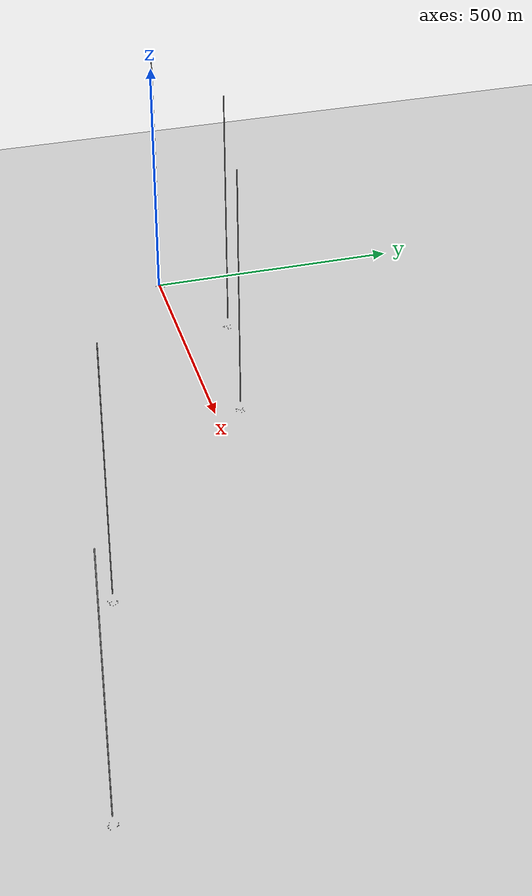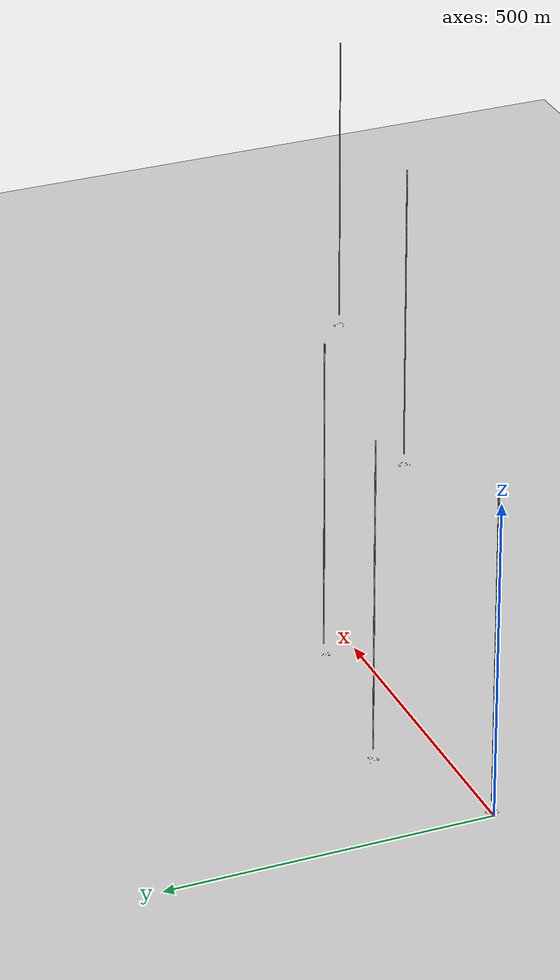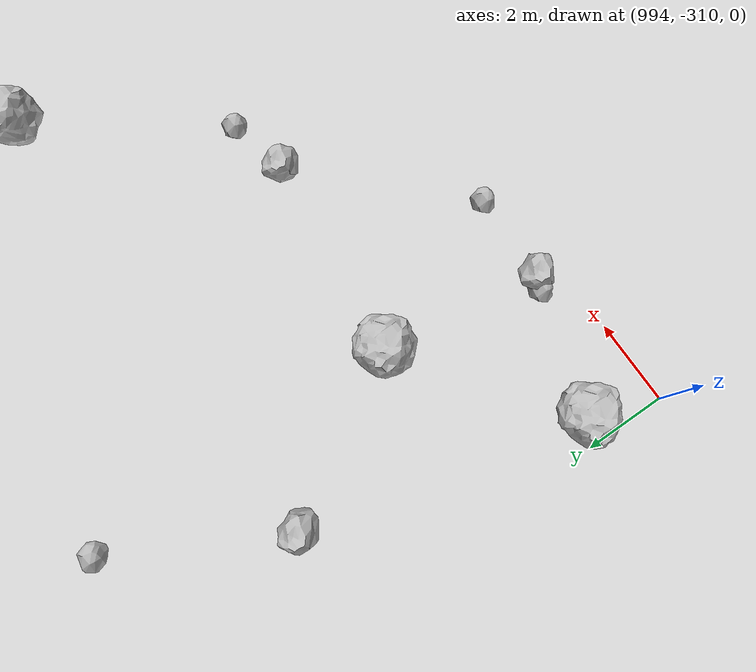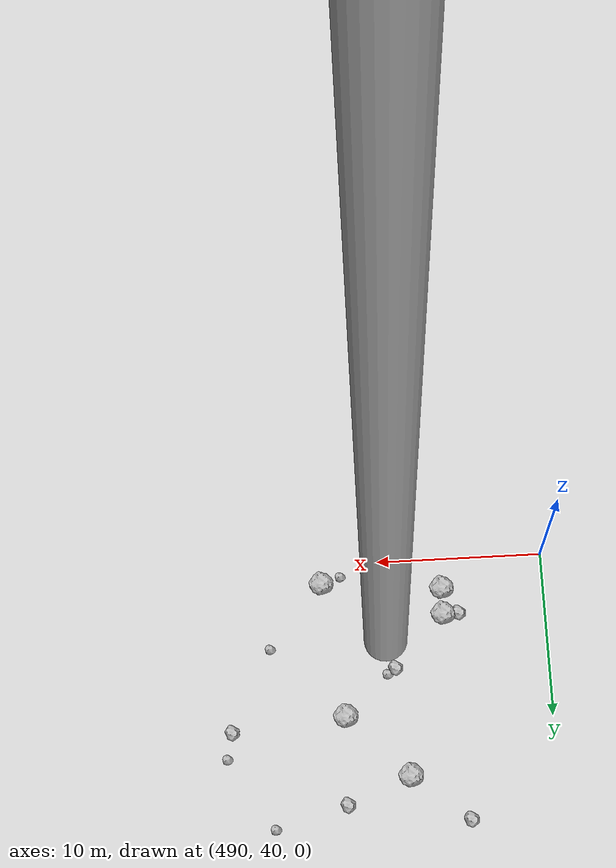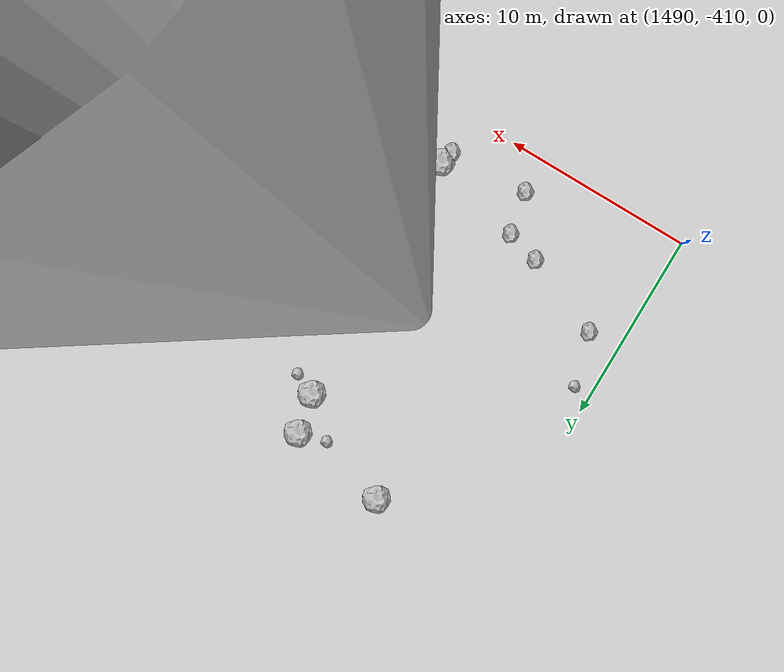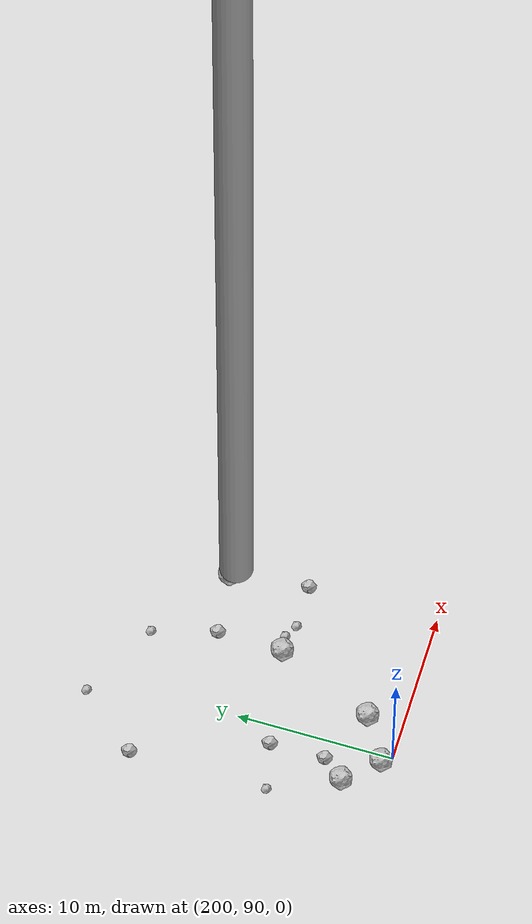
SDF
<?xml version="1.0" ?>
<sdf version="1.6">
  <world name="default">

    <include>
      <uri>model://custom_ground</uri>
    </include>

    <include>
      <uri>model://sun</uri>
    </include>

    <spherical_coordinates>
      <surface_model>EARTH_WGS84</surface_model>
      <latitude_deg>38.161479</latitude_deg>
      <longitude_deg>-122.454630</longitude_deg>
      <elevation>488.0</elevation>
      <heading_deg>90</heading_deg>
    </spherical_coordinates>

    <model name="rock1_0_0">
      <include>
        <uri>model://rock1</uri>
        <pose>12.414806147870905 8.059480577474957 0.5 0 0 0</pose>
      </include>
    </model>
    <model name="rock1_0_1">
      <include>
        <uri>model://rock1</uri>
        <pose>5.252832881433456 -8.444166113372017 0.5 0 0 0</pose>
      </include>
    </model>
    <model name="rock1_0_2">
      <include>
        <uri>model://rock1</uri>
        <pose>18.2785585588813 2.480269732250724 0.5 0 0 0</pose>
      </include>
    </model>
    <model name="rock1_0_3">
      <include>
        <uri>model://rock1</uri>
        <pose>16.894661932624004 3.680151363376396 0.5 0 0 0</pose>
      </include>
    </model>
    <model name="rock1_0_4">
      <include>
        <uri>model://rock1</uri>
        <pose>4.777426614624856 5.494429066981002 0.5 0 0 0</pose>
      </include>
    </model>
    <model name="rock2_0_0">
      <include>
        <uri>model://rock2</uri>
        <pose>9.709381398856785 7.613753465027116 0.3 0 0 0</pose>
      </include>
    </model>
    <model name="rock2_0_1">
      <include>
        <uri>model://rock2</uri>
        <pose>5.96968204055369 6.244011946276494 0.3 0 0 0</pose>
      </include>
    </model>
    <model name="rock2_0_2">
      <include>
        <uri>model://rock2</uri>
        <pose>12.63768310649562 8.435789461421564 0.3 0 0 0</pose>
      </include>
    </model>
    <model name="rock2_0_3">
      <include>
        <uri>model://rock2</uri>
        <pose>12.302609515158721 -9.59739479584675 0.3 0 0 0</pose>
      </include>
    </model>
    <model name="rock2_0_4">
      <include>
        <uri>model://rock2</uri>
        <pose>17.019501139987547 -0.634001479494195 0.3 0 0 0</pose>
      </include>
    </model>
    <model name="rock3_0_0">
      <include>
        <uri>model://rock3</uri>
        <pose>11.622883365654577 -6.528478879332544 0.2 0 0 0</pose>
      </include>
    </model>
    <model name="rock3_0_1">
      <include>
        <uri>model://rock3</uri>
        <pose>13.199309737126324 -3.899646057876036 0.2 0 0 0</pose>
      </include>
    </model>
    <model name="rock3_0_2">
      <include>
        <uri>model://rock3</uri>
        <pose>18.167544199163988 -2.8664029133122604 0.2 0 0 0</pose>
      </include>
    </model>
    <model name="rock3_0_3">
      <include>
        <uri>model://rock3</uri>
        <pose>14.346629407630383 7.306392850063897 0.2 0 0 0</pose>
      </include>
    </model>
    <model name="rock3_0_4">
      <include>
        <uri>model://rock3</uri>
        <pose>12.571167001036436 -4.219325494090245 0.2 0 0 0</pose>
      </include>
    </model>
    <model name="rock1_1_0">
      <include>
        <uri>model://rock1</uri>
        <pose>197.68191126914698 92.64618782822907 0.5 0 0 0</pose>
      </include>
    </model>
    <model name="rock1_1_1">
      <include>
        <uri>model://rock1</uri>
        <pose>205.07909044661716 98.64676087987677 0.5 0 0 0</pose>
      </include>
    </model>
    <model name="rock1_1_2">
      <include>
        <uri>model://rock1</uri>
        <pose>202.33973514002463 92.30320115160532 0.5 0 0 0</pose>
      </include>
    </model>
    <model name="rock1_1_3">
      <include>
        <uri>model://rock1</uri>
        <pose>199.59426533491236 90.6327652414019 0.5 0 0 0</pose>
      </include>
    </model>
    <model name="rock1_1_4">
      <include>
        <uri>model://rock1</uri>
        <pose>209.17169395540148 103.33450811497949 0.5 0 0 0</pose>
      </include>
    </model>
    <model name="rock2_1_0">
      <include>
        <uri>model://rock2</uri>
        <pose>198.76924324769826 94.01593457909229 0.3 0 0 0</pose>
      </include>
    </model>
    <model name="rock2_1_1">
      <include>
        <uri>model://rock2</uri>
        <pose>195.70435808552145 105.68990002730078 0.3 0 0 0</pose>
      </include>
    </model>
    <model name="rock2_1_2">
      <include>
        <uri>model://rock2</uri>
        <pose>205.15904639299873 102.88661007251604 0.3 0 0 0</pose>
      </include>
    </model>
    <model name="rock2_1_3">
      <include>
        <uri>model://rock2</uri>
        <pose>198.74265750906613 97.54440668922201 0.3 0 0 0</pose>
      </include>
    </model>
    <model name="rock2_1_4">
      <include>
        <uri>model://rock2</uri>
        <pose>209.83132977167415 98.35659133267148 0.3 0 0 0</pose>
      </include>
    </model>
    <model name="rock3_1_0">
      <include>
        <uri>model://rock3</uri>
        <pose>198.9322023092514 109.47522816485633 0.2 0 0 0</pose>
      </include>
    </model>
    <model name="rock3_1_1">
      <include>
        <uri>model://rock3</uri>
        <pose>195.71226763617685 96.83361194158196 0.2 0 0 0</pose>
      </include>
    </model>
    <model name="rock3_1_2">
      <include>
        <uri>model://rock3</uri>
        <pose>206.9802035712102 98.29074815137267 0.2 0 0 0</pose>
      </include>
    </model>
    <model name="rock3_1_3">
      <include>
        <uri>model://rock3</uri>
        <pose>204.0029238534855 106.88287371354129 0.2 0 0 0</pose>
      </include>
    </model>
    <model name="rock3_1_4">
      <include>
        <uri>model://rock3</uri>
        <pose>206.08951675047496 98.76761011672407 0.2 0 0 0</pose>
      </include>
    </model>
    <model name="rock1_2_0">
      <include>
        <uri>model://rock1</uri>
        <pose>498.6645492785418 53.22779694960341 0.5 0 0 0</pose>
      </include>
    </model>
    <model name="rock1_2_1">
      <include>
        <uri>model://rock1</uri>
        <pose>502.32953921384217 49.526577911056805 0.5 0 0 0</pose>
      </include>
    </model>
    <model name="rock1_2_2">
      <include>
        <uri>model://rock1</uri>
        <pose>503.47507740359066 41.314143169579296 0.5 0 0 0</pose>
      </include>
    </model>
    <model name="rock1_2_3">
      <include>
        <uri>model://rock1</uri>
        <pose>496.2031103891442 43.523620884584986 0.5 0 0 0</pose>
      </include>
    </model>
    <model name="rock1_2_4">
      <include>
        <uri>model://rock1</uri>
        <pose>496.1924556896246 41.91208410685252 0.5 0 0 0</pose>
      </include>
    </model>
    <model name="rock2_2_0">
      <include>
        <uri>model://rock2</uri>
        <pose>495.24712897010596 43.48739856882908 0.3 0 0 0</pose>
      </include>
    </model>
    <model name="rock2_2_1">
      <include>
        <uri>model://rock2</uri>
        <pose>495.28052837135095 55.95365434063758 0.3 0 0 0</pose>
      </include>
    </model>
    <model name="rock2_2_2">
      <include>
        <uri>model://rock2</uri>
        <pose>509.0751721898344 50.18769940555463 0.3 0 0 0</pose>
      </include>
    </model>
    <model name="rock2_2_3">
      <include>
        <uri>model://rock2</uri>
        <pose>499.2307385521709 46.72655169730858 0.3 0 0 0</pose>
      </include>
    </model>
    <model name="rock2_2_4">
      <include>
        <uri>model://rock2</uri>
        <pose>502.40821048552675 54.78641160975799 0.3 0 0 0</pose>
      </include>
    </model>
    <model name="rock3_2_0">
      <include>
        <uri>model://rock3</uri>
        <pose>506.67617462546315 45.18728687326119 0.2 0 0 0</pose>
      </include>
    </model>
    <model name="rock3_2_1">
      <include>
        <uri>model://rock3</uri>
        <pose>502.29153248724685 40.84554469133144 0.2 0 0 0</pose>
      </include>
    </model>
    <model name="rock3_2_2">
      <include>
        <uri>model://rock3</uri>
        <pose>509.3646832552311 51.735341417811426 0.2 0 0 0</pose>
      </include>
    </model>
    <model name="rock3_2_3">
      <include>
        <uri>model://rock3</uri>
        <pose>506.6347144445595 55.977402098445125 0.2 0 0 0</pose>
      </include>
    </model>
    <model name="rock3_2_4">
      <include>
        <uri>model://rock3</uri>
        <pose>499.6950242267581 47.04450382197008 0.2 0 0 0</pose>
      </include>
    </model>
    <model name="rock1_3_0">
      <include>
        <uri>model://rock1</uri>
        <pose>997.2321572974316 -292.8423263386498 0.5 0 0 0</pose>
      </include>
    </model>
    <model name="rock1_3_1">
      <include>
        <uri>model://rock1</uri>
        <pose>998.4097361628727 -305.4560195173281 0.5 0 0 0</pose>
      </include>
    </model>
    <model name="rock1_3_2">
      <include>
        <uri>model://rock1</uri>
        <pose>1008.2572187571999 -301.0045565558224 0.5 0 0 0</pose>
      </include>
    </model>
    <model name="rock1_3_3">
      <include>
        <uri>model://rock1</uri>
        <pose>998.6676682922418 -291.8114560613063 0.5 0 0 0</pose>
      </include>
    </model>
    <model name="rock1_3_4">
      <include>
        <uri>model://rock1</uri>
        <pose>994.6693902657971 -308.3176640222435 0.5 0 0 0</pose>
      </include>
    </model>
    <model name="rock2_3_0">
      <include>
        <uri>model://rock2</uri>
        <pose>996.1095794680846 -301.74315517463026 0.3 0 0 0</pose>
      </include>
    </model>
    <model name="rock2_3_1">
      <include>
        <uri>model://rock2</uri>
        <pose>997.8990827757559 -309.402815307548 0.3 0 0 0</pose>
      </include>
    </model>
    <model name="rock2_3_2">
      <include>
        <uri>model://rock2</uri>
        <pose>1003.5545623590716 -305.88514124948483 0.3 0 0 0</pose>
      </include>
    </model>
    <model name="rock2_3_3">
      <include>
        <uri>model://rock2</uri>
        <pose>1005.7703147804746 -297.1046531801456 0.3 0 0 0</pose>
      </include>
    </model>
    <model name="rock2_3_4">
      <include>
        <uri>model://rock2</uri>
        <pose>1002.685367617544 -292.435880711671 0.3 0 0 0</pose>
      </include>
    </model>
    <model name="rock3_3_0">
      <include>
        <uri>model://rock3</uri>
        <pose>998.0617174777504 -297.89065538597816 0.2 0 0 0</pose>
      </include>
    </model>
    <model name="rock3_3_1">
      <include>
        <uri>model://rock3</uri>
        <pose>998.7053885878846 -290.4180222106042 0.2 0 0 0</pose>
      </include>
    </model>
    <model name="rock3_3_2">
      <include>
        <uri>model://rock3</uri>
        <pose>997.5127124892812 -309.2973098489297 0.2 0 0 0</pose>
      </include>
    </model>
    <model name="rock3_3_3">
      <include>
        <uri>model://rock3</uri>
        <pose>1005.0827260866386 -305.5198699231258 0.2 0 0 0</pose>
      </include>
    </model>
    <model name="rock3_3_4">
      <include>
        <uri>model://rock3</uri>
        <pose>1000.0551496472644 -309.48740522472684 0.2 0 0 0</pose>
      </include>
    </model>
    <model name="rock1_4_0">
      <include>
        <uri>model://rock1</uri>
        <pose>1507.038279822616 -405.14679329892095 0.5 0 0 0</pose>
      </include>
    </model>
    <model name="rock1_4_1">
      <include>
        <uri>model://rock1</uri>
        <pose>1496.6642211470348 -390.83629940604544 0.5 0 0 0</pose>
      </include>
    </model>
    <model name="rock1_4_2">
      <include>
        <uri>model://rock1</uri>
        <pose>1502.6896458739184 -407.2551004993601 0.5 0 0 0</pose>
      </include>
    </model>
    <model name="rock1_4_3">
      <include>
        <uri>model://rock1</uri>
        <pose>1502.245375944986 -393.7243234605092 0.5 0 0 0</pose>
      </include>
    </model>
    <model name="rock1_4_4">
      <include>
        <uri>model://rock1</uri>
        <pose>1501.8248418109567 -391.6582608923886 0.5 0 0 0</pose>
      </include>
    </model>
    <model name="rock2_4_0">
      <include>
        <uri>model://rock2</uri>
        <pose>1491.7337999530046 -403.7106854924191 0.3 0 0 0</pose>
      </include>
    </model>
    <model name="rock2_4_1">
      <include>
        <uri>model://rock2</uri>
        <pose>1497.7425080894275 -405.93914485452655 0.3 0 0 0</pose>
      </include>
    </model>
    <model name="rock2_4_2">
      <include>
        <uri>model://rock2</uri>
        <pose>1495.979190542501 -405.45263715454627 0.3 0 0 0</pose>
      </include>
    </model>
    <model name="rock2_4_3">
      <include>
        <uri>model://rock2</uri>
        <pose>1502.4431719586705 -407.96024152695685 0.3 0 0 0</pose>
      </include>
    </model>
    <model name="rock2_4_4">
      <include>
        <uri>model://rock2</uri>
        <pose>1498.1991983271216 -408.159258855032 0.3 0 0 0</pose>
      </include>
    </model>
    <model name="rock3_4_0">
      <include>
        <uri>model://rock3</uri>
        <pose>1490.9094831203731 -400.97260931774366 0.2 0 0 0</pose>
      </include>
    </model>
    <model name="rock3_4_1">
      <include>
        <uri>model://rock3</uri>
        <pose>1503.3476820940507 -394.2455032161232 0.2 0 0 0</pose>
      </include>
    </model>
    <model name="rock3_4_2">
      <include>
        <uri>model://rock3</uri>
        <pose>1500.29522005097 -392.0427884298435 0.2 0 0 0</pose>
      </include>
    </model>
    <model name="rock3_4_3">
      <include>
        <uri>model://rock3</uri>
        <pose>1502.1616039278874 -404.24647725535004 0.2 0 0 0</pose>
      </include>
    </model>
    <model name="rock3_4_4">
      <include>
        <uri>model://rock3</uri>
        <pose>1504.4333031395374 -399.20535890573444 0.2 0 0 0</pose>
      </include>
    </model>

    <model name="cylinder_1">
      <static>true</static>
      <link name="link">
        <visual name="visual">
          <geometry>
            <cylinder>
              <radius>1</radius>
              <length>500</length>
            </cylinder>
          </geometry>
        </visual>
      </link>
      <pose>10 0 270 0 0 0</pose>
    </model>

    <model name="cylinder_2">
      <static>true</static>
      <link name="link">
        <visual name="visual">
          <geometry>
            <cylinder>
              <radius>1</radius>
              <length>500</length>
            </cylinder>
          </geometry>
        </visual>
      </link>
      <pose>200 100 270 0 0 0</pose>
    </model>

    <model name="cylinder_3">
      <static>true</static>
      <link name="link">
        <visual name="visual">
          <geometry>
            <cylinder>
              <radius>1</radius>
              <length>500</length>
            </cylinder>
          </geometry>
        </visual>
      </link>
      <pose>500 50 270 0 0 0</pose>
    </model>

    <model name="cylinder_4">
      <static>true</static>
      <link name="link">
        <visual name="visual">
          <geometry>
            <cylinder>
              <radius>1</radius>
              <length>500</length>
            </cylinder>
          </geometry>
        </visual>
      </link>
      <pose>1000 -300 270 0 0 0</pose>
    </model>

    <model name="cylinder_5">
      <static>true</static>
      <link name="link">
        <visual name="visual">
          <geometry>
            <cylinder>
              <radius>1</radius>
              <length>500</length>
            </cylinder>
          </geometry>
        </visual>
      </link>
      <pose>1500 -400 270 0 0 0</pose>
    </model>

  </world>
</sdf>

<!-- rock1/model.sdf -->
<sdf version="1.6">
  <model name="rock1">
    <static>true</static> <!-- Set to true if the model should not move -->
    <pose>0 0 0 0 0 0</pose>

    <!--z offset is 0.5 for full scale-->

    <link name="link">
      <collision name="rock1_collision">
        <geometry>
          <mesh>
            <uri>model://meshes/rock1.dae</uri>
          </mesh>
        </geometry>
      </collision>
      <visual name="rock1_visual">
        <geometry>
          <mesh>
            <uri>model://meshes/rock1.dae</uri>
          </mesh>
        </geometry>
        <material>
          <script>
            <uri>model://materials/scripts/sand_pebbles.material</uri>
            <name>custom_ground/Image</name>
          </script>
        </material>
      </visual>
    </link>
  </model>
</sdf>

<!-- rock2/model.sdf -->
<sdf version="1.6">
  <model name="rock2">
    <static>true</static> <!-- Set to true if the model should not move -->
    <pose>0 0 0 0 0 0</pose>

    <!--z offset is 0.3 for full scale-->

    <link name="link">
      <collision name="rock2_collision">
        <geometry>
          <mesh>
            <uri>model://meshes/rock2.dae</uri>
          </mesh>
        </geometry>
      </collision>
      <visual name="rock2_visual">
        <geometry>
          <mesh>
            <uri>model://meshes/rock2.dae</uri>
          </mesh>
        </geometry>
        <material>
          <script>
            <uri>model://materials/scripts/sand_pebbles.material</uri>
            <name>custom_ground/Image</name>
          </script>
        </material>
      </visual>
    </link>
  </model>
</sdf>

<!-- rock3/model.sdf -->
<sdf version="1.6">
  <model name="rock3">
    <static>true</static> <!-- Set to true if the model should not move -->
    <pose>0 0 0 0 0 0</pose>

    <!--z offset is 0.2 for full scale-->

    <link name="link">
      <collision name="rock3_collision">
        <geometry>
          <mesh>
            <uri>model://meshes/rock3.dae</uri>
          </mesh>
        </geometry>
      </collision>
      <visual name="rock3_visual">
        <geometry>
          <mesh>
            <uri>model://meshes/rock3.dae</uri>
          </mesh>
        </geometry>
        <material>
          <script>
            <uri>model://materials/scripts/sand_pebbles.material</uri>
            <name>custom_ground/Image</name>
          </script>
        </material>
      </visual>
    </link>
  </model>
</sdf>

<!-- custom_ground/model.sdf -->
<sdf version="1.6">
  <model name="custom_ground">
    <static>true</static> <!-- Ground is static and immovable -->
    <link name="ground_link">
      <pose>240 0 0 0 0 0</pose> <!-- Position and orientation relative to the world -->
      <!-- Visual Representation -->
      <visual name="ground_visual">
        <geometry>
          <plane>
            <normal>0 0 1</normal> <!-- Upward facing plane -->
            <size>500 500</size> <!-- Size of the plane -->
          </plane>
        </geometry>
        <material>
          <script>
            <uri>model://materials/scripts/sand_pebbles.material</uri>
            <name>custom_ground/Image</name>
          </script>
        </material>
      </visual>

      <!-- Collision Representation -->
      <collision name="ground_collision">
        <geometry>
          <plane>
            <normal>0 0 1</normal>
            <size>100 100</size>
          </plane>
        </geometry>
      </collision>

    </link>
  </model>
</sdf>
